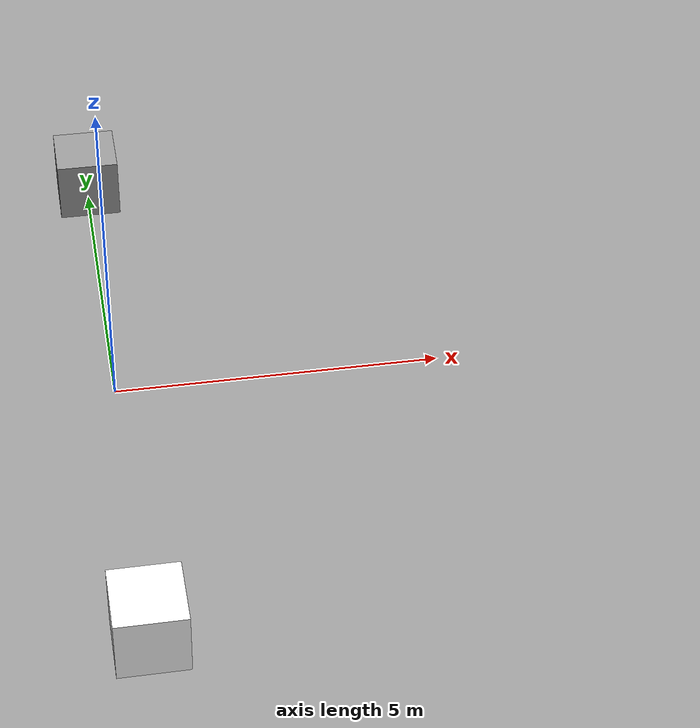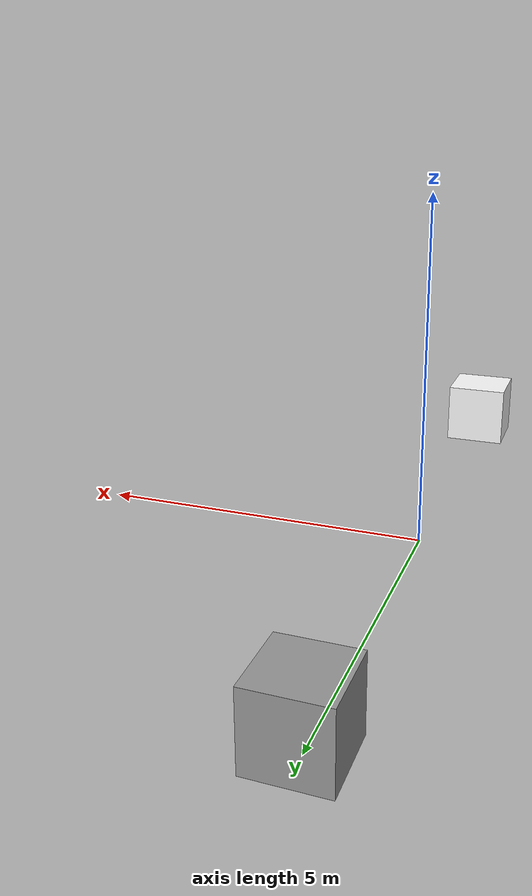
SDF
<?xml version="1.0" ?>
<sdf version="1.6">
  <world name="default">

    <include>
      <uri>model://sun</uri>
    </include>

    <gui>
      <camera name="user">
        <pose>-15 0 15 0 0.785398 0</pose>
      </camera>
    </gui>

    <model name="model">
      <static>true</static>
      <link name="link">
        <visual name="visual-assimp-3">
          <pose>0 5 0.5 0 0 0</pose>
          <geometry>
            <mesh>
              <uri>file://media/models/box-assimp-3.dae</uri>
            </mesh>
          </geometry>
        </visual>
        <visual name="visual-assimp-4">
          <pose>0 -5 0.5 0 0 0</pose>
          <geometry>
            <mesh>
              <uri>file://media/models/box-assimp-4.dae</uri>
            </mesh>
          </geometry>
        </visual>
      </link>
    </model>

  </world>
</sdf>
